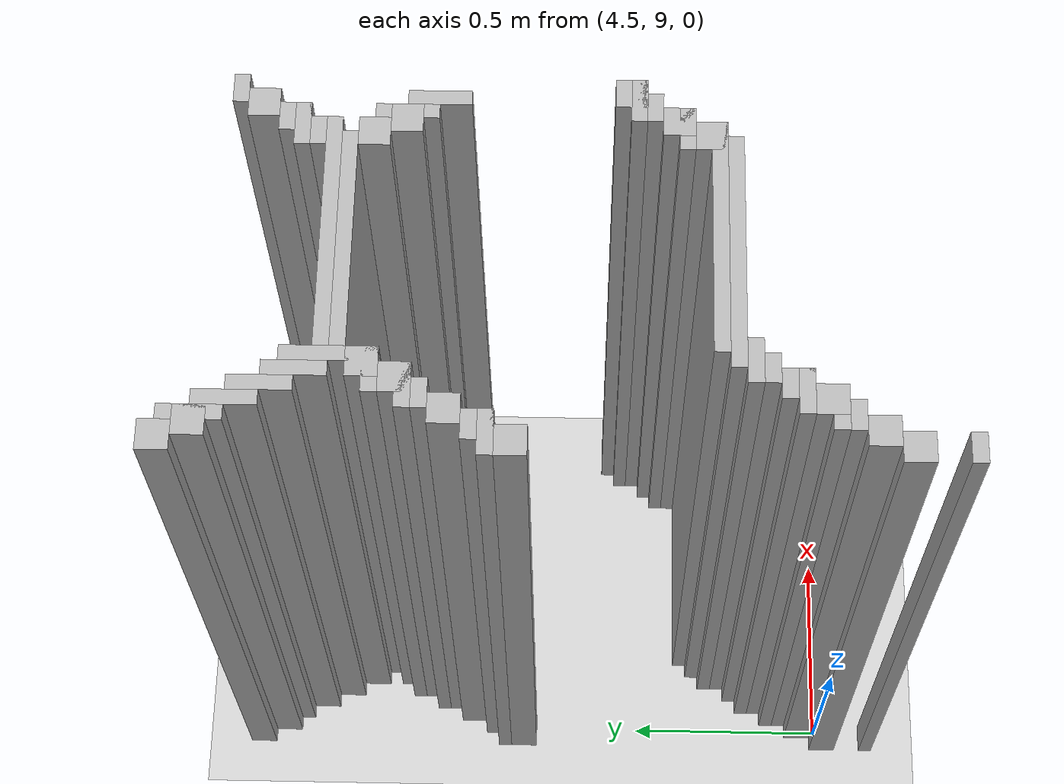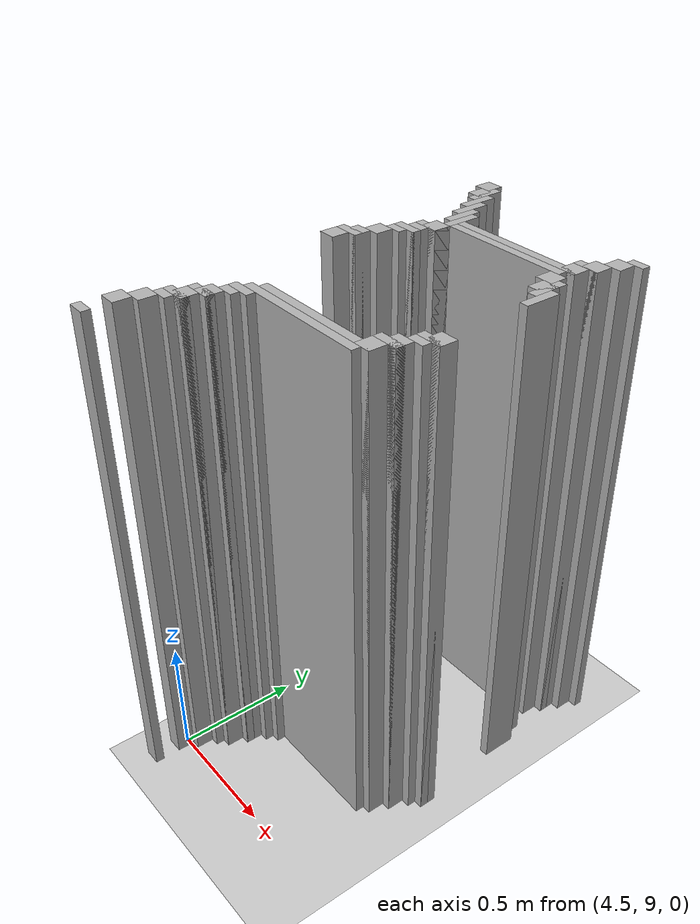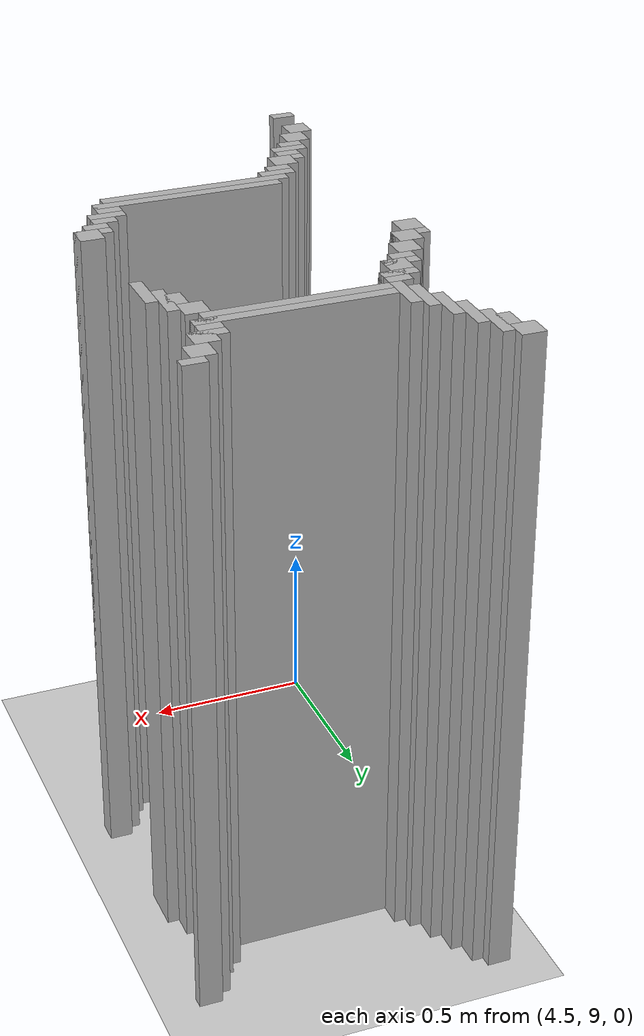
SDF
<sdf version="1.6">
 <world name="slam_world">
  <model name="ground_plane">
   <static>true</static>
   <link name="link">
    <collision name="collision">
     <geometry><plane><normal>0 0 1</normal><size>100 100</size></plane></geometry>
    </collision>
    <visual name="visual">
     <geometry><plane><normal>0 0 1</normal><size>100 100</size></plane></geometry>
     <material>
      <ambient>0.8 0.8 0.8 1</ambient>
      <diffuse>0.8 0.8 0.8 1</diffuse>
      <specular>0.8 0.8 0.8 1</specular>
     </material>
    </visual>
   </link>
  </model>
  <model name="wall_2240">
   <static>true</static>
   <pose>4.489559164733178 10.54524361948956 1.0 0 0 0</pose>
   <link name="link">
    <collision name="collision">
     <geometry><box><size>0.06960556844547564 0.06960556844547564 2.0</size></box></geometry>
    </collision>
    <visual name="visual">
     <geometry><box><size>0.06960556844547564 0.06960556844547564 2.0</size></box></geometry>
     <material><ambient>0.5 0.5 0.5 1</ambient><diffuse>0.7 0.7 0.7 1</diffuse></material>
    </visual>
   </link>
  </model>
  <model name="wall_2257">
   <static>true</static>
   <pose>4.541763341067285 10.475638051044083 1.0 0 0 0</pose>
   <link name="link">
    <collision name="collision">
     <geometry><box><size>0.03480278422273782 0.13921113689095127 2.0</size></box></geometry>
    </collision>
    <visual name="visual">
     <geometry><box><size>0.03480278422273782 0.13921113689095127 2.0</size></box></geometry>
     <material><ambient>0.5 0.5 0.5 1</ambient><diffuse>0.7 0.7 0.7 1</diffuse></material>
    </visual>
   </link>
  </model>
  <model name="wall_2274">
   <static>true</static>
   <pose>4.524361948955916 10.475638051044083 1.0 0 0 0</pose>
   <link name="link">
    <collision name="collision">
     <geometry><box><size>0.06960556844547564 0.06960556844547564 2.0</size></box></geometry>
    </collision>
    <visual name="visual">
     <geometry><box><size>0.06960556844547564 0.06960556844547564 2.0</size></box></geometry>
     <material><ambient>0.5 0.5 0.5 1</ambient><diffuse>0.7 0.7 0.7 1</diffuse></material>
    </visual>
   </link>
  </model>
  <model name="wall_2291">
   <static>true</static>
   <pose>4.576566125290023 10.406032482598608 1.0 0 0 0</pose>
   <link name="link">
    <collision name="collision">
     <geometry><box><size>0.03480278422273782 0.13921113689095127 2.0</size></box></geometry>
    </collision>
    <visual name="visual">
     <geometry><box><size>0.03480278422273782 0.13921113689095127 2.0</size></box></geometry>
     <material><ambient>0.5 0.5 0.5 1</ambient><diffuse>0.7 0.7 0.7 1</diffuse></material>
    </visual>
   </link>
  </model>
  <model name="wall_2305">
   <static>true</static>
   <pose>5.324825986078886 10.423433874709977 1.0 0 0 0</pose>
   <link name="link">
    <collision name="collision">
     <geometry><box><size>0.06960556844547564 0.03480278422273782 2.0</size></box></geometry>
    </collision>
    <visual name="visual">
     <geometry><box><size>0.06960556844547564 0.03480278422273782 2.0</size></box></geometry>
     <material><ambient>0.5 0.5 0.5 1</ambient><diffuse>0.7 0.7 0.7 1</diffuse></material>
    </visual>
   </link>
  </model>
  <model name="wall_2316">
   <static>true</static>
   <pose>4.611368909512761 10.336426914153131 1.0 0 0 0</pose>
   <link name="link">
    <collision name="collision">
     <geometry><box><size>0.03480278422273782 0.13921113689095127 2.0</size></box></geometry>
    </collision>
    <visual name="visual">
     <geometry><box><size>0.03480278422273782 0.13921113689095127 2.0</size></box></geometry>
     <material><ambient>0.5 0.5 0.5 1</ambient><diffuse>0.7 0.7 0.7 1</diffuse></material>
    </visual>
   </link>
  </model>
  <model name="wall_2317">
   <static>true</static>
   <pose>5.290023201856148 10.37122969837587 1.0 0 0 0</pose>
   <link name="link">
    <collision name="collision">
     <geometry><box><size>0.06960556844547564 0.06960556844547564 2.0</size></box></geometry>
    </collision>
    <visual name="visual">
     <geometry><box><size>0.06960556844547564 0.06960556844547564 2.0</size></box></geometry>
     <material><ambient>0.5 0.5 0.5 1</ambient><diffuse>0.7 0.7 0.7 1</diffuse></material>
    </visual>
   </link>
  </model>
  <model name="wall_2333">
   <static>true</static>
   <pose>4.646171693735498 10.266821345707656 1.0 0 0 0</pose>
   <link name="link">
    <collision name="collision">
     <geometry><box><size>0.03480278422273782 0.13921113689095127 2.0</size></box></geometry>
    </collision>
    <visual name="visual">
     <geometry><box><size>0.03480278422273782 0.13921113689095127 2.0</size></box></geometry>
     <material><ambient>0.5 0.5 0.5 1</ambient><diffuse>0.7 0.7 0.7 1</diffuse></material>
    </visual>
   </link>
  </model>
  <model name="wall_2334">
   <static>true</static>
   <pose>5.25522041763341 10.301624129930394 1.0 0 0 0</pose>
   <link name="link">
    <collision name="collision">
     <geometry><box><size>0.06960556844547564 0.06960556844547564 2.0</size></box></geometry>
    </collision>
    <visual name="visual">
     <geometry><box><size>0.06960556844547564 0.06960556844547564 2.0</size></box></geometry>
     <material><ambient>0.5 0.5 0.5 1</ambient><diffuse>0.7 0.7 0.7 1</diffuse></material>
    </visual>
   </link>
  </model>
  <model name="wall_2350">
   <static>true</static>
   <pose>4.6809744779582365 10.19721577726218 1.0 0 0 0</pose>
   <link name="link">
    <collision name="collision">
     <geometry><box><size>0.03480278422273782 0.2088167053364269 2.0</size></box></geometry>
    </collision>
    <visual name="visual">
     <geometry><box><size>0.03480278422273782 0.2088167053364269 2.0</size></box></geometry>
     <material><ambient>0.5 0.5 0.5 1</ambient><diffuse>0.7 0.7 0.7 1</diffuse></material>
    </visual>
   </link>
  </model>
  <model name="wall_2351">
   <static>true</static>
   <pose>5.237819025522041 10.284222737819025 1.0 0 0 0</pose>
   <link name="link">
    <collision name="collision">
     <geometry><box><size>0.10440835266821345 0.03480278422273782 2.0</size></box></geometry>
    </collision>
    <visual name="visual">
     <geometry><box><size>0.10440835266821345 0.03480278422273782 2.0</size></box></geometry>
     <material><ambient>0.5 0.5 0.5 1</ambient><diffuse>0.7 0.7 0.7 1</diffuse></material>
    </visual>
   </link>
  </model>
  <model name="wall_2364">
   <static>true</static>
   <pose>5.220417633410673 10.232018561484919 1.0 0 0 0</pose>
   <link name="link">
    <collision name="collision">
     <geometry><box><size>0.06960556844547564 0.06960556844547564 2.0</size></box></geometry>
    </collision>
    <visual name="visual">
     <geometry><box><size>0.06960556844547564 0.06960556844547564 2.0</size></box></geometry>
     <material><ambient>0.5 0.5 0.5 1</ambient><diffuse>0.7 0.7 0.7 1</diffuse></material>
    </visual>
   </link>
  </model>
  <model name="wall_2373">
   <static>true</static>
   <pose>4.976798143851508 10.214617169373549 1.0 0 0 0</pose>
   <link name="link">
    <collision name="collision">
     <geometry><box><size>0.5568445475638051 0.03480278422273782 2.0</size></box></geometry>
    </collision>
    <visual name="visual">
     <geometry><box><size>0.5568445475638051 0.03480278422273782 2.0</size></box></geometry>
     <material><ambient>0.5 0.5 0.5 1</ambient><diffuse>0.7 0.7 0.7 1</diffuse></material>
    </visual>
   </link>
  </model>
  <model name="wall_2385">
   <static>true</static>
   <pose>4.959396751740139 10.179814385150811 1.0 0 0 0</pose>
   <link name="link">
    <collision name="collision">
     <geometry><box><size>0.5220417633410672 0.03480278422273782 2.0</size></box></geometry>
    </collision>
    <visual name="visual">
     <geometry><box><size>0.5220417633410672 0.03480278422273782 2.0</size></box></geometry>
     <material><ambient>0.5 0.5 0.5 1</ambient><diffuse>0.7 0.7 0.7 1</diffuse></material>
    </visual>
   </link>
  </model>
  <model name="wall_2394">
   <static>true</static>
   <pose>4.663573085846868 10.127610208816705 1.0 0 0 0</pose>
   <link name="link">
    <collision name="collision">
     <geometry><box><size>0.06960556844547564 0.06960556844547564 2.0</size></box></geometry>
    </collision>
    <visual name="visual">
     <geometry><box><size>0.06960556844547564 0.06960556844547564 2.0</size></box></geometry>
     <material><ambient>0.5 0.5 0.5 1</ambient><diffuse>0.7 0.7 0.7 1</diffuse></material>
    </visual>
   </link>
  </model>
  <model name="wall_2395">
   <static>true</static>
   <pose>5.220417633410673 10.127610208816705 1.0 0 0 0</pose>
   <link name="link">
    <collision name="collision">
     <geometry><box><size>0.06960556844547564 0.06960556844547564 2.0</size></box></geometry>
    </collision>
    <visual name="visual">
     <geometry><box><size>0.06960556844547564 0.06960556844547564 2.0</size></box></geometry>
     <material><ambient>0.5 0.5 0.5 1</ambient><diffuse>0.7 0.7 0.7 1</diffuse></material>
    </visual>
   </link>
  </model>
  <model name="wall_2410">
   <static>true</static>
   <pose>4.646171693735498 10.110208816705336 1.0 0 0 0</pose>
   <link name="link">
    <collision name="collision">
     <geometry><box><size>0.10440835266821345 0.03480278422273782 2.0</size></box></geometry>
    </collision>
    <visual name="visual">
     <geometry><box><size>0.10440835266821345 0.03480278422273782 2.0</size></box></geometry>
     <material><ambient>0.5 0.5 0.5 1</ambient><diffuse>0.7 0.7 0.7 1</diffuse></material>
    </visual>
   </link>
  </model>
  <model name="wall_2411">
   <static>true</static>
   <pose>5.27262180974478 10.058004640371228 1.0 0 0 0</pose>
   <link name="link">
    <collision name="collision">
     <geometry><box><size>0.03480278422273782 0.13921113689095127 2.0</size></box></geometry>
    </collision>
    <visual name="visual">
     <geometry><box><size>0.03480278422273782 0.13921113689095127 2.0</size></box></geometry>
     <material><ambient>0.5 0.5 0.5 1</ambient><diffuse>0.7 0.7 0.7 1</diffuse></material>
    </visual>
   </link>
  </model>
  <model name="wall_2426">
   <static>true</static>
   <pose>4.6287703016241295 10.058004640371228 1.0 0 0 0</pose>
   <link name="link">
    <collision name="collision">
     <geometry><box><size>0.06960556844547564 0.06960556844547564 2.0</size></box></geometry>
    </collision>
    <visual name="visual">
     <geometry><box><size>0.06960556844547564 0.06960556844547564 2.0</size></box></geometry>
     <material><ambient>0.5 0.5 0.5 1</ambient><diffuse>0.7 0.7 0.7 1</diffuse></material>
    </visual>
   </link>
  </model>
  <model name="wall_2427">
   <static>true</static>
   <pose>5.25522041763341 10.058004640371228 1.0 0 0 0</pose>
   <link name="link">
    <collision name="collision">
     <geometry><box><size>0.06960556844547564 0.06960556844547564 2.0</size></box></geometry>
    </collision>
    <visual name="visual">
     <geometry><box><size>0.06960556844547564 0.06960556844547564 2.0</size></box></geometry>
     <material><ambient>0.5 0.5 0.5 1</ambient><diffuse>0.7 0.7 0.7 1</diffuse></material>
    </visual>
   </link>
  </model>
  <model name="wall_2442">
   <static>true</static>
   <pose>4.611368909512761 10.04060324825986 1.0 0 0 0</pose>
   <link name="link">
    <collision name="collision">
     <geometry><box><size>0.10440835266821345 0.03480278422273782 2.0</size></box></geometry>
    </collision>
    <visual name="visual">
     <geometry><box><size>0.10440835266821345 0.03480278422273782 2.0</size></box></geometry>
     <material><ambient>0.5 0.5 0.5 1</ambient><diffuse>0.7 0.7 0.7 1</diffuse></material>
    </visual>
   </link>
  </model>
  <model name="wall_2443">
   <static>true</static>
   <pose>5.307424593967517 9.988399071925754 1.0 0 0 0</pose>
   <link name="link">
    <collision name="collision">
     <geometry><box><size>0.03480278422273782 0.13921113689095127 2.0</size></box></geometry>
    </collision>
    <visual name="visual">
     <geometry><box><size>0.03480278422273782 0.13921113689095127 2.0</size></box></geometry>
     <material><ambient>0.5 0.5 0.5 1</ambient><diffuse>0.7 0.7 0.7 1</diffuse></material>
    </visual>
   </link>
  </model>
  <model name="wall_2456">
   <static>true</static>
   <pose>4.593967517401392 10.005800464037122 1.0 0 0 0</pose>
   <link name="link">
    <collision name="collision">
     <geometry><box><size>0.06960556844547564 0.03480278422273782 2.0</size></box></geometry>
    </collision>
    <visual name="visual">
     <geometry><box><size>0.06960556844547564 0.03480278422273782 2.0</size></box></geometry>
     <material><ambient>0.5 0.5 0.5 1</ambient><diffuse>0.7 0.7 0.7 1</diffuse></material>
    </visual>
   </link>
  </model>
  <model name="wall_2467">
   <static>true</static>
   <pose>4.559164733178654 9.953596287703016 1.0 0 0 0</pose>
   <link name="link">
    <collision name="collision">
     <geometry><box><size>0.06960556844547564 0.06960556844547564 2.0</size></box></geometry>
    </collision>
    <visual name="visual">
     <geometry><box><size>0.06960556844547564 0.06960556844547564 2.0</size></box></geometry>
     <material><ambient>0.5 0.5 0.5 1</ambient><diffuse>0.7 0.7 0.7 1</diffuse></material>
    </visual>
   </link>
  </model>
  <model name="wall_2483">
   <static>true</static>
   <pose>4.524361948955916 9.88399071925754 1.0 0 0 0</pose>
   <link name="link">
    <collision name="collision">
     <geometry><box><size>0.06960556844547564 0.06960556844547564 2.0</size></box></geometry>
    </collision>
    <visual name="visual">
     <geometry><box><size>0.06960556844547564 0.06960556844547564 2.0</size></box></geometry>
     <material><ambient>0.5 0.5 0.5 1</ambient><diffuse>0.7 0.7 0.7 1</diffuse></material>
    </visual>
   </link>
  </model>
  <model name="wall_2499">
   <static>true</static>
   <pose>4.506960556844548 9.86658932714617 1.0 0 0 0</pose>
   <link name="link">
    <collision name="collision">
     <geometry><box><size>0.10440835266821345 0.03480278422273782 2.0</size></box></geometry>
    </collision>
    <visual name="visual">
     <geometry><box><size>0.10440835266821345 0.03480278422273782 2.0</size></box></geometry>
     <material><ambient>0.5 0.5 0.5 1</ambient><diffuse>0.7 0.7 0.7 1</diffuse></material>
    </visual>
   </link>
  </model>
  <model name="wall_2513">
   <static>true</static>
   <pose>4.489559164733178 9.814385150812065 1.0 0 0 0</pose>
   <link name="link">
    <collision name="collision">
     <geometry><box><size>0.06960556844547564 0.06960556844547564 2.0</size></box></geometry>
    </collision>
    <visual name="visual">
     <geometry><box><size>0.06960556844547564 0.06960556844547564 2.0</size></box></geometry>
     <material><ambient>0.5 0.5 0.5 1</ambient><diffuse>0.7 0.7 0.7 1</diffuse></material>
    </visual>
   </link>
  </model>
  <model name="wall_2584">
   <static>true</static>
   <pose>5.324825986078886 9.5707656612529 1.0 0 0 0</pose>
   <link name="link">
    <collision name="collision">
     <geometry><box><size>0.06960556844547564 0.06960556844547564 2.0</size></box></geometry>
    </collision>
    <visual name="visual">
     <geometry><box><size>0.06960556844547564 0.06960556844547564 2.0</size></box></geometry>
     <material><ambient>0.5 0.5 0.5 1</ambient><diffuse>0.7 0.7 0.7 1</diffuse></material>
    </visual>
   </link>
  </model>
  <model name="wall_2595">
   <static>true</static>
   <pose>5.307424593967517 9.55336426914153 1.0 0 0 0</pose>
   <link name="link">
    <collision name="collision">
     <geometry><box><size>0.10440835266821345 0.03480278422273782 2.0</size></box></geometry>
    </collision>
    <visual name="visual">
     <geometry><box><size>0.10440835266821345 0.03480278422273782 2.0</size></box></geometry>
     <material><ambient>0.5 0.5 0.5 1</ambient><diffuse>0.7 0.7 0.7 1</diffuse></material>
    </visual>
   </link>
  </model>
  <model name="wall_2604">
   <static>true</static>
   <pose>5.290023201856148 9.518561484918793 1.0 0 0 0</pose>
   <link name="link">
    <collision name="collision">
     <geometry><box><size>0.06960556844547564 0.03480278422273782 2.0</size></box></geometry>
    </collision>
    <visual name="visual">
     <geometry><box><size>0.06960556844547564 0.03480278422273782 2.0</size></box></geometry>
     <material><ambient>0.5 0.5 0.5 1</ambient><diffuse>0.7 0.7 0.7 1</diffuse></material>
    </visual>
   </link>
  </model>
  <model name="wall_2609">
   <static>true</static>
   <pose>5.25522041763341 9.466357308584687 1.0 0 0 0</pose>
   <link name="link">
    <collision name="collision">
     <geometry><box><size>0.06960556844547564 0.06960556844547564 2.0</size></box></geometry>
    </collision>
    <visual name="visual">
     <geometry><box><size>0.06960556844547564 0.06960556844547564 2.0</size></box></geometry>
     <material><ambient>0.5 0.5 0.5 1</ambient><diffuse>0.7 0.7 0.7 1</diffuse></material>
    </visual>
   </link>
  </model>
  <model name="wall_2620">
   <static>true</static>
   <pose>5.237819025522041 9.448955916473318 1.0 0 0 0</pose>
   <link name="link">
    <collision name="collision">
     <geometry><box><size>0.10440835266821345 0.03480278422273782 2.0</size></box></geometry>
    </collision>
    <visual name="visual">
     <geometry><box><size>0.10440835266821345 0.03480278422273782 2.0</size></box></geometry>
     <material><ambient>0.5 0.5 0.5 1</ambient><diffuse>0.7 0.7 0.7 1</diffuse></material>
    </visual>
   </link>
  </model>
  <model name="wall_2629">
   <static>true</static>
   <pose>5.220417633410673 9.39675174013921 1.0 0 0 0</pose>
   <link name="link">
    <collision name="collision">
     <geometry><box><size>0.06960556844547564 0.06960556844547564 2.0</size></box></geometry>
    </collision>
    <visual name="visual">
     <geometry><box><size>0.06960556844547564 0.06960556844547564 2.0</size></box></geometry>
     <material><ambient>0.5 0.5 0.5 1</ambient><diffuse>0.7 0.7 0.7 1</diffuse></material>
    </visual>
   </link>
  </model>
  <model name="wall_2635">
   <static>true</static>
   <pose>4.976798143851508 9.379350348027842 1.0 0 0 0</pose>
   <link name="link">
    <collision name="collision">
     <geometry><box><size>0.5568445475638051 0.03480278422273782 2.0</size></box></geometry>
    </collision>
    <visual name="visual">
     <geometry><box><size>0.5568445475638051 0.03480278422273782 2.0</size></box></geometry>
     <material><ambient>0.5 0.5 0.5 1</ambient><diffuse>0.7 0.7 0.7 1</diffuse></material>
    </visual>
   </link>
  </model>
  <model name="wall_2648">
   <static>true</static>
   <pose>4.94199535962877 9.344547563805104 1.0 0 0 0</pose>
   <link name="link">
    <collision name="collision">
     <geometry><box><size>0.5568445475638051 0.03480278422273782 2.0</size></box></geometry>
    </collision>
    <visual name="visual">
     <geometry><box><size>0.5568445475638051 0.03480278422273782 2.0</size></box></geometry>
     <material><ambient>0.5 0.5 0.5 1</ambient><diffuse>0.7 0.7 0.7 1</diffuse></material>
    </visual>
   </link>
  </model>
  <model name="wall_2661">
   <static>true</static>
   <pose>4.6809744779582365 9.309744779582367 1.0 0 0 0</pose>
   <link name="link">
    <collision name="collision">
     <geometry><box><size>0.10440835266821345 0.03480278422273782 2.0</size></box></geometry>
    </collision>
    <visual name="visual">
     <geometry><box><size>0.10440835266821345 0.03480278422273782 2.0</size></box></geometry>
     <material><ambient>0.5 0.5 0.5 1</ambient><diffuse>0.7 0.7 0.7 1</diffuse></material>
    </visual>
   </link>
  </model>
  <model name="wall_2678">
   <static>true</static>
   <pose>4.663573085846868 9.274941995359628 1.0 0 0 0</pose>
   <link name="link">
    <collision name="collision">
     <geometry><box><size>0.06960556844547564 0.03480278422273782 2.0</size></box></geometry>
    </collision>
    <visual name="visual">
     <geometry><box><size>0.06960556844547564 0.03480278422273782 2.0</size></box></geometry>
     <material><ambient>0.5 0.5 0.5 1</ambient><diffuse>0.7 0.7 0.7 1</diffuse></material>
    </visual>
   </link>
  </model>
  <model name="wall_2692">
   <static>true</static>
   <pose>4.6287703016241295 9.222737819025522 1.0 0 0 0</pose>
   <link name="link">
    <collision name="collision">
     <geometry><box><size>0.06960556844547564 0.06960556844547564 2.0</size></box></geometry>
    </collision>
    <visual name="visual">
     <geometry><box><size>0.06960556844547564 0.06960556844547564 2.0</size></box></geometry>
     <material><ambient>0.5 0.5 0.5 1</ambient><diffuse>0.7 0.7 0.7 1</diffuse></material>
    </visual>
   </link>
  </model>
  <model name="wall_2710">
   <static>true</static>
   <pose>4.611368909512761 9.205336426914153 1.0 0 0 0</pose>
   <link name="link">
    <collision name="collision">
     <geometry><box><size>0.10440835266821345 0.03480278422273782 2.0</size></box></geometry>
    </collision>
    <visual name="visual">
     <geometry><box><size>0.10440835266821345 0.03480278422273782 2.0</size></box></geometry>
     <material><ambient>0.5 0.5 0.5 1</ambient><diffuse>0.7 0.7 0.7 1</diffuse></material>
    </visual>
   </link>
  </model>
  <model name="wall_2726">
   <static>true</static>
   <pose>4.593967517401392 9.153132250580047 1.0 0 0 0</pose>
   <link name="link">
    <collision name="collision">
     <geometry><box><size>0.06960556844547564 0.06960556844547564 2.0</size></box></geometry>
    </collision>
    <visual name="visual">
     <geometry><box><size>0.06960556844547564 0.06960556844547564 2.0</size></box></geometry>
     <material><ambient>0.5 0.5 0.5 1</ambient><diffuse>0.7 0.7 0.7 1</diffuse></material>
    </visual>
   </link>
  </model>
  <model name="wall_2740">
   <static>true</static>
   <pose>4.576566125290023 9.135730858468676 1.0 0 0 0</pose>
   <link name="link">
    <collision name="collision">
     <geometry><box><size>0.10440835266821345 0.03480278422273782 2.0</size></box></geometry>
    </collision>
    <visual name="visual">
     <geometry><box><size>0.10440835266821345 0.03480278422273782 2.0</size></box></geometry>
     <material><ambient>0.5 0.5 0.5 1</ambient><diffuse>0.7 0.7 0.7 1</diffuse></material>
    </visual>
   </link>
  </model>
  <model name="wall_2755">
   <static>true</static>
   <pose>4.559164733178654 9.100928074245939 1.0 0 0 0</pose>
   <link name="link">
    <collision name="collision">
     <geometry><box><size>0.06960556844547564 0.03480278422273782 2.0</size></box></geometry>
    </collision>
    <visual name="visual">
     <geometry><box><size>0.06960556844547564 0.03480278422273782 2.0</size></box></geometry>
     <material><ambient>0.5 0.5 0.5 1</ambient><diffuse>0.7 0.7 0.7 1</diffuse></material>
    </visual>
   </link>
  </model>
  <model name="wall_2769">
   <static>true</static>
   <pose>4.524361948955916 9.048723897911833 1.0 0 0 0</pose>
   <link name="link">
    <collision name="collision">
     <geometry><box><size>0.06960556844547564 0.06960556844547564 2.0</size></box></geometry>
    </collision>
    <visual name="visual">
     <geometry><box><size>0.06960556844547564 0.06960556844547564 2.0</size></box></geometry>
     <material><ambient>0.5 0.5 0.5 1</ambient><diffuse>0.7 0.7 0.7 1</diffuse></material>
    </visual>
   </link>
  </model>
  <model name="wall_2787">
   <static>true</static>
   <pose>4.489559164733178 8.979118329466356 1.0 0 0 0</pose>
   <link name="link">
    <collision name="collision">
     <geometry><box><size>0.06960556844547564 0.06960556844547564 2.0</size></box></geometry>
    </collision>
    <visual name="visual">
     <geometry><box><size>0.06960556844547564 0.06960556844547564 2.0</size></box></geometry>
     <material><ambient>0.5 0.5 0.5 1</ambient><diffuse>0.7 0.7 0.7 1</diffuse></material>
    </visual>
   </link>
  </model>
  <model name="wall_2848">
   <static>true</static>
   <pose>4.489559164733178 8.857308584686775 1.0 0 0 0</pose>
   <link name="link">
    <collision name="collision">
     <geometry><box><size>0.06960556844547564 0.03480278422273782 2.0</size></box></geometry>
    </collision>
    <visual name="visual">
     <geometry><box><size>0.06960556844547564 0.03480278422273782 2.0</size></box></geometry>
     <material><ambient>0.5 0.5 0.5 1</ambient><diffuse>0.7 0.7 0.7 1</diffuse></material>
    </visual>
   </link>
  </model>
 </world>
</sdf>
